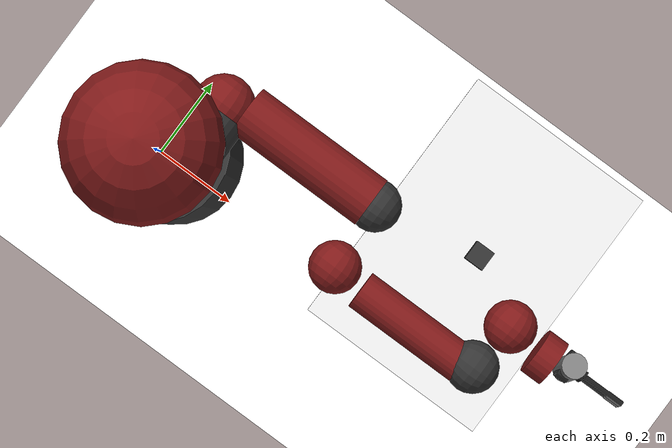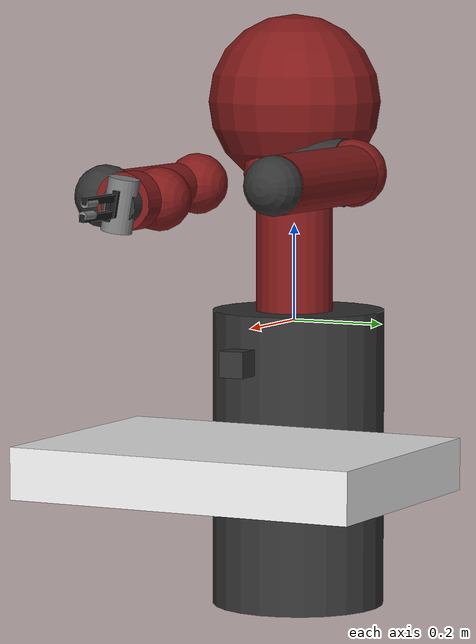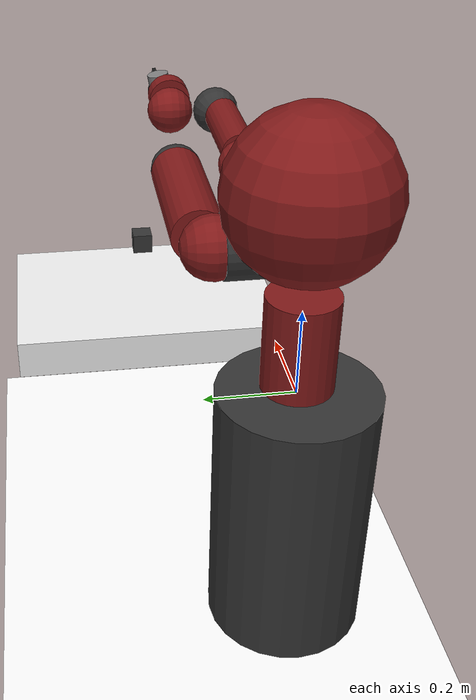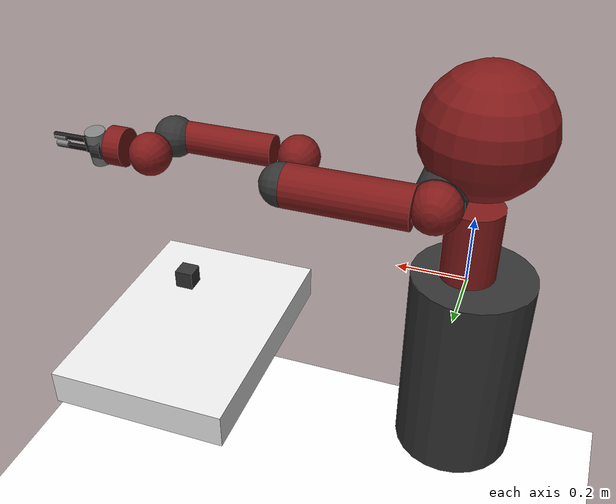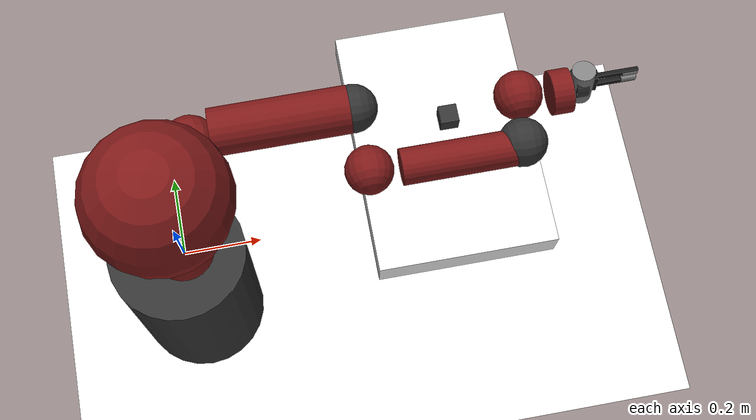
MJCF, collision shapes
<mujoco model="sawyer">
    <compiler angle="radian" meshdir="meshes/" />
    <size njmax="500" nconmax="100" />
    <asset>
        <texture type="skybox" builtin="gradient" rgb1="0.44 0.85 0.56" rgb2="0.46 0.87 0.58" width="32" height="32"></texture>
        <material name="floor_mat" specular="0" shininess="0.5" reflectance="0" rgba="1 1 1 1"></material>
        <material name="table_mat" specular="0" shininess="0.5" reflectance="0" rgba="0.93 0.93 0.93 1"></material>
        <material name="block_mat" specular="0" shininess="0.5" reflectance="0" rgba="0.2 0.2 0.2 1"></material>
        <mesh name="pedestal" file="pedestal.STL" />
        <mesh name="base" file="base.STL" />
        <mesh name="l0" file="l0.STL" />
        <mesh name="head" file="head.STL" />
        <mesh name="l1" file="l1.STL" />
        <mesh name="l2" file="l2.STL" />
        <mesh name="l3" file="l3.STL" />
        <mesh name="l4" file="l4.STL" />
        <mesh name="l5" file="l5.STL" />
        <mesh name="l6" file="l6.STL" />
	<mesh name="half_round_tip" file="half_round_tip.STL" />
	<mesh name="electric_gripper_base" file="electric_gripper_base.STL" />
        <mesh name="extended_narrow" file="extended_narrow.STL"/>
        <mesh name="paddle_tip" file="paddle_tip.STL"/>
    </asset>

    <default>
        <joint damping="0.2" stiffness="0" armature=".01" user="0"/>
        <geom solref="0.008 1" solimp="0.95 0.95 0.01" margin="0.001" user="0"/>
	<default class="viz">
		<geom contype="0" conaffinity="0" group="1" type="mesh"/>
	</default>
        <motor ctrllimited="true" ctrlrange="-1 1"/>
        <position ctrllimited="true"/>

        <default class='0'>
            <geom friction="1 0.005 0.001" rgba=".75 .6 .5 1" contype="1" conaffinity="0"/>
        </default>

        <default class='1'>
            <geom friction="1 0.005 0.001" rgba=".7 .6 .55 1" contype="1" conaffinity="0"/>
        </default>

        <default class='arm'>
            <joint damping="5"/>
        </default>
    </default>

    <worldbody>
        <light directional="true" ambient="0.2 0.2 0.2" diffuse="0.8 0.8 0.8" specular="0.3 0.3 0.3" castshadow="false" pos="0 0 4" dir="0 0 -1" name="light0"></light>

        <geom name="floor0" pos="0.4 0 -0.92" size="1.2 0.7 1" type="plane" condim="3" material="floor_mat"></geom>
	<geom size="0.25 0.35 0.05" pos="0.75 0.25 -0.2" type="box" name="table0" mass="2000" material="table_mat"></geom>

        <body name="object0" pos="0.75 0.25 0.0">
            <joint name="object0:joint" type="free" damping="0.01"></joint>
            <geom size="0.025 0.025 0.025" type="box" condim="3" name="object0" material="block_mat" mass="2"></geom>
            <site name="object0" pos="0 0 0" size="0.02 0.02 0.02" rgba="1 0 0 1" type="sphere"></site>
        </body>

        <body name="base" pos="0 0 0">
            <site name="basesite" pos="0 0 0" size="0.01" />
            <inertial pos="0 0 0" mass="0" diaginertia="0 0 0" />
            <body name="torso" pos="0 0 0">
                <inertial pos="0 0 0" mass="0.0001" diaginertia="1e-08 1e-08 1e-08" />
                <geom size="0.05 0.05 0.05" type="box" contype="0" conaffinity="0" group="1" rgba="0.2 0.2 0.2 1" />
            </body>
            <body name="pedestal" pos="0 0 0">
                <inertial pos="0 0 0" quat="0.659267 -0.259505 -0.260945 0.655692" mass="60.864" diaginertia="6.0869 5.81635 4.20915" />
                <geom pos="0.26 0.345 -0.91488" quat="0.5 0.5 -0.5 -0.5" type="mesh" contype="0" conaffinity="0" group="1" rgba="0.2 0.2 0.2 1" mesh="pedestal" />
                <geom size="0.18 0.31" pos="-0.02 0 -0.29" type="cylinder" rgba="0.2 0.2 0.2 0" />
            </body>
            <body name="right_arm_base_link" pos="0 0 0">
                <inertial pos="-0.0006241 -2.8025e-05 0.065404" quat="-0.209285 0.674441 0.227335 0.670558" mass="2.0687" diaginertia="0.00740351 0.00681776 0.00672942" />
                <geom type="mesh" contype="0" conaffinity="0" group="1" rgba="0.5 0.1 0.1 1" mesh="base" />
                <geom size="0.08 0.12" pos="0 0 0.12" type="cylinder" rgba="0.5 0.1 0.1 0" />
                <body name="right_l0" pos="0 0 0.08">
                    <inertial pos="0.024366 0.010969 0.14363" quat="0.894823 0.00899958 -0.170275 0.412573" mass="5.3213" diaginertia="0.0651588 0.0510944 0.0186218" />
                    <joint name="right_j0" pos="0 0 0" axis="0 0 1" limited="true" range="-3.0503 3.0503" damping="10"/>
                    <geom type="mesh" contype="0" conaffinity="0" group="1" rgba="0.5 0.1 0.1 1" mesh="l0" />
                    <geom size="0.07" pos="0.08 0 0.23" rgba="0.5 0.1 0.1 0" />
                    <body name="head" pos="0 0 0.2965">
                        <inertial pos="0.0053207 -2.6549e-05 0.1021" quat="0.999993 7.08405e-05 -0.00359857 -0.000626247" mass="1.5795" diaginertia="0.0118334 0.00827089 0.00496574" />
                        <geom type="mesh" contype="0" conaffinity="0" group="1" rgba="0.5 0.1 0.1 1" mesh="head" />
                        <geom size="0.18" pos="0 0 0.08" rgba="0.5 0.1 0.1 0" />
                        <body name="screen" pos="0.03 0 0.105" quat="0.5 0.5 0.5 0.5">
                            <inertial pos="0 0 0" mass="0.0001" diaginertia="1e-08 1e-08 1e-08" />
                            <geom size="0.12 0.07 0.001" type="box" contype="0" conaffinity="0" group="1" rgba="0.2 0.2 0.2 0" />
                            <geom size="0.001" rgba="0.2 0.2 0.2 0" />
                        </body>
                        <body name="head_camera" pos="0.0228027 0 0.216572" quat="0.342813 -0.618449 0.618449 -0.342813">
                            <inertial pos="0.0228027 0 0.216572" quat="0.342813 -0.618449 0.618449 -0.342813" mass="0" diaginertia="0 0 0" />
                            <site name="headsite" pos="0 0 0" size="0.01" />
                        </body>
                    </body>
                    <body name="right_torso_itb" pos="-0.055 0 0.22" quat="0.707107 0 -0.707107 0">
                        <inertial pos="0 0 0" mass="0.0001" diaginertia="1e-08 1e-08 1e-08" />
                    </body>
                    <body name="right_l1" pos="0.081 0.05 0.237" quat="0.5 -0.5 0.5 0.5">
                        <inertial pos="-0.0030849 -0.026811 0.092521" quat="0.424888 0.891987 0.132364 -0.0794296" mass="4.505" diaginertia="0.0224339 0.0221624 0.0097097" />
                        <joint name="right_j1" pos="0 0 0" axis="0 0 1" limited="true" range="-3.8095 2.2736" damping="10"/>
                        <geom type="mesh" contype="0" conaffinity="0" group="1" rgba="0.5 0.1 0.1 1" mesh="l1" />
                        <geom size="0.07" pos="0 0 0.1225" rgba="0.5 0.1 0.1 0" />
                        <body name="right_l2" pos="0 -0.14 0.1425" quat="0.707107 0.707107 0 0">
                            <inertial pos="-0.00016044 -0.014967 0.13582" quat="0.707831 -0.0524761 0.0516007 0.702537" mass="1.745" diaginertia="0.0257928 0.025506 0.00292515" />
                            <joint name="right_j2" pos="0 0 0" axis="0 0 1" limited="true" range="-3.0426 3.0426" damping="10"/>
                            <geom type="mesh" contype="0" conaffinity="0" group="1" rgba="0.5 0.1 0.1 1" mesh="l2" />
                            <geom size="0.06 0.17" pos="0 0 0.08" type="cylinder" rgba="0.5 0.1 0.1 0" />
                            <body name="right_l3" pos="0 -0.042 0.26" quat="0.707107 -0.707107 0 0">
                                <site name="armsite" pos="0 0 0" size="0.01" />
                                <inertial pos="-0.0048135 -0.0281 -0.084154" quat="0.902999 0.385391 -0.0880901 0.168247" mass="2.5097" diaginertia="0.0102404 0.0096997 0.00369622" />
                                <joint name="right_j3" pos="0 0 0" axis="0 0 1" limited="true" range="-3.0439 3.0439" damping="10"/>
                                <geom type="mesh" contype="0" conaffinity="0" group="1" rgba="0.5 0.1 0.1 1" mesh="l3" />
                                <geom size="0.06" pos="0 -0.01 -0.12" rgba="0.5 0.1 0.1 0" />
                                <body name="right_l4" pos="0 -0.125 -0.1265" quat="0.707107 0.707107 0 0">
                                    <inertial pos="-0.0018844 0.0069001 0.1341" quat="0.803612 0.031257 -0.0298334 0.593582" mass="1.1136" diaginertia="0.0136549 0.0135493 0.00127353" />
                                    <joint name="right_j4" pos="0 0 0" axis="0 0 1" limited="true" range="-2.9761 2.9761" damping="10" />
                                    <geom type="mesh" contype="0" conaffinity="0" group="1" rgba="0.5 0.1 0.1 1" mesh="l4" />
                                    <geom size="0.045 0.15" pos="0 0 0.11" type="cylinder" rgba="0.5 0.1 0.1 0" />
                                    <body name="right_arm_itb" pos="-0.055 0 0.075" quat="0.707107 0 -0.707107 0">
                                        <inertial pos="0 0 0" mass="0.0001" diaginertia="1e-08 1e-08 1e-08" />
                                    </body>
                                    <body name="right_l5" pos="0 0.031 0.275" quat="0.707107 -0.707107 0 0">
                                        <inertial pos="0.0061133 -0.023697 0.076416" quat="0.404076 0.9135 0.0473125 0.00158335" mass="1.5625" diaginertia="0.00474131 0.00422857 0.00190672" />
                                        <joint name="right_j5" pos="0 0 0" axis="0 0 1" limited="true" range="-2.9761 2.9761" damping="10"/>
                                        <geom type="mesh" contype="0" conaffinity="0" group="1" rgba="0.5 0.1 0.1 1" mesh="l5" />
                                        <geom size="0.06" pos="0 0 0.1" rgba="0.5 0.1 0.1 0" />
                                        <body name="right_hand_camera" pos="0.039552 -0.033 0.0695" quat="0.707107 0 0.707107 0">
                                            <inertial pos="0.039552 -0.033 0.0695" quat="0.707107 0 0.707107 0" mass="0" diaginertia="0 0 0" />
                                        </body>
                                        <body name="right_wrist" pos="0 0 0.10541" quat="0.707107 0.707107 0 0">
                                            <inertial pos="0 0 0.10541" quat="0.707107 0.707107 0 0" mass="0" diaginertia="0 0 0" />
                                        </body>
                                        <body name="right_l6" pos="0 -0.11 0.1053" quat="0.0616248 0.06163 -0.704416 0.704416">
                                            <inertial pos="-8.0726e-06 0.0085838 -0.0049566" quat="0.479044 0.515636 -0.513069 0.491322" mass="0.3292" diaginertia="0.000360258 0.000311068 0.000214974" />
                                            <joint name="right_j6" pos="0 0 0" axis="0 0 1" limited="true" range="-4.7124 4.7124" damping="10"/>
                                            <geom type="mesh" contype="0" conaffinity="0" group="1" rgba="0.5 0.1 0.1 1" mesh="l6" />
                                            <geom size="0.055 0.025" pos="0 0.015 -0.01" type="cylinder" rgba="0.5 0.1 0.1 0" />
                                            <body name="right_hand" pos="0 0 0.0245" quat="0.707107 0 0 0.707107">
                                                <inertial pos="1e-08 1e-08 1e-08" quat="0.820473 0.339851 -0.17592 0.424708" mass="1e-08" diaginertia="1e-08 1e-08 1e-08" />
                                                <geom size="0.035 0.015" pos="0 0 0.02" type="cylinder" rgba="0.2 0.2 0.2 0"/>

<!--  ================= BEGIN GRIPPER ================= /-->
                                                        <!--site name="endeffector" pos="0 0 0" size="0.01" /-->
                                                    <!--/body-->
                                                <!--/body-->
                                                   <body name="right_gripper_base" pos="0 0 0.025">
                                                        <inertial pos="0 0 0" quat="-0.5 0.5 0.5 0.5" mass="0.3" diaginertia="3e-08 2e-08 2e-08" />
                                                        <geom quat="0 0 0.707107 0.707107" class="viz" mesh="electric_gripper_base" />
                                                        <geom size="0.029 0.05" quat="0 0 0.707107 0.707107" type="cylinder" />
                                                        <body name="r_gripper_l_finger" pos="0 -0.0015 0.02">
                                                            <inertial pos="0 0 0" quat="0 0 0 -1" mass="0.02" diaginertia="0.01 0.01 0.01" />
                                                            <joint name="r_gripper_l_finger_joint" pos="0 0 0" axis="0 1 0" type="slide" range="0 0.020833" limited="true"/>
                                                            <geom class="viz" mesh="extended_narrow" euler="1.57 1.57 0" rgba="0.1 0.1 0.1 1"/>
                                                            <geom size="0.005 0.00675 0.05635" pos="0 0.01725 0.0615" quat="0 0 0 -1" type="box" rgba="0.1 0.1 0.1 1"/>
                                                            <geom size="0.005 0.025 0.0085" pos="-0.005 -0.003 0.0083" quat="0 0 0 -1" type="box" rgba="0.1 0.1 0.1 1"/>
                                                            <body name="r_gripper_l_finger_tip" pos="0 0.01725 0.1127">
                                                                <inertial pos="0 0 0" quat="0 0 0 1" mass="0.01" diaginertia="0.01 0.01 0.01" />
                                                                <geom pos="-.007 -.01 0.003" class="viz" mesh="half_round_tip" euler="-1.57 0 0"/>
                                                                <geom size="0.008 0.0185" pos="0 -0.0045 -0.015" quat="0 0 0 1" type="cylinder" />
                                                            </body>
                                                        </body>
                                                        <body name="r_gripper_r_finger" pos="0 0.0015 0.02">
                                                            <inertial pos="0 0 0" mass="0.02" diaginertia="0.01 0.01 0.01" />
                                                            <joint name="r_gripper_r_finger_joint" pos="0 0 0" axis="0 1 0" type="slide" range="-0.020833 0" limited="true"/>
                                                            <geom class="viz" mesh="extended_narrow" euler="1.57 -1.57 0" rgba="0.1 0.1 0.1 1"/>
                                                            <geom size="0.005 0.00675 0.05635" pos="0 -0.01725 0.0615" type="box" rgba="0.1 0.1 0.1 1"/>
                                                            <geom size="0.005 0.025 0.0085" pos="0.005 0.003 0.0083" type="box" rgba="0.1 0.1 0.1 1"/>
                                                            <body name="r_gripper_r_finger_tip" pos="0 -0.01725 0.1127">
                                                                <inertial pos="0 0 0" mass="0.01" diaginertia="0.01 0.01 0.01" />
                                                                <geom pos=".007 .01 0.003" class="viz" mesh="half_round_tip" euler="-1.57 3.14 0"/>
                                                                <geom size="0.008 0.0185" pos="0 0.0045 -0.015" type="cylinder" />
                                                            </body>
                                                        </body>
                                                    </body>
<!--  ================= END GRIPPER ================= /-->

                                            </body>
                                        </body>
                                    </body>
                                    <body name="right_l4_2" pos="0 0 0">
                                        <inertial pos="1e-08 1e-08 1e-08" quat="0.820473 0.339851 -0.17592 0.424708" mass="1e-08" diaginertia="1e-08 1e-08 1e-08" />
                                        <geom size="0.06" pos="0 0.01 0.26" rgba="0.2 0.2 0.2 0"/>
                                    </body>
                                </body>
                            </body>
                            <body name="right_l2_2" pos="0 0 0">
                                <inertial pos="1e-08 1e-08 1e-08" quat="0.820473 0.339851 -0.17592 0.424708" mass="1e-08" diaginertia="1e-08 1e-08 1e-08" />
                                <geom size="0.06" pos="0 0 0.26" rgba="0.2 0.2 0.2 0"/>
                            </body>
                        </body>
                        <body name="right_l1_2" pos="0 0 0">
                            <inertial pos="1e-08 1e-08 1e-08" quat="0.820473 0.339851 -0.17592 0.424708" mass="1e-08" diaginertia="1e-08 1e-08 1e-08" />
                            <geom size="0.07 0.07" pos="0 0 0.035" type="cylinder" rgba="0.2 0.2 0.2 0"/>
                        </body>
                    </body>
                </body>
            </body>
        </body>

        <body mocap="true" name="mocap" pos="0.2369680365278436 0.7377722688452103 0.30233579064225752">
            <geom conaffinity="0" contype="0" pos="0 0 0" rgba="1.0 1.0 1.0 0.0" size="0.02 0.02 0.02" type="box"></geom>
        </body>

    </worldbody>

    <actuator>
        <motor joint="right_j0" ctrlrange="-100.0 100.0" ctrllimited="false"/>
        <motor joint="right_j1" ctrlrange="-100.0 100.0" ctrllimited="false"/>
        <motor joint="right_j2" ctrlrange="-100.0 100.0" ctrllimited="false"/>
        <motor joint="right_j3" ctrlrange="-100.0 100.0" ctrllimited="false"/>
        <motor joint="right_j4" ctrlrange="-100.0 100.0" ctrllimited="false"/>
        <motor joint="right_j5" ctrlrange="-100.0 100.0" ctrllimited="false"/>
        <motor joint="right_j6" ctrlrange="-100.0 100.0" ctrllimited="false"/>
        <motor gear="1" joint="r_gripper_l_finger_joint" name="slide_l_claw"/>
	<motor gear="1" joint="r_gripper_r_finger_joint" name="slide_r_claw"/>
    </actuator>

</mujoco>
